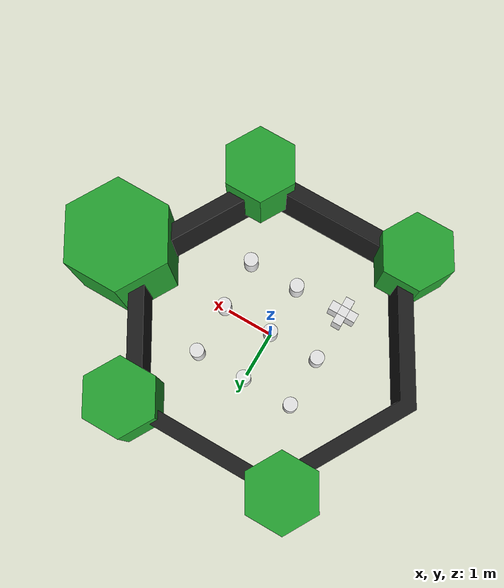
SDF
<sdf version='1.5'>
    <!-- Draw Circle -->
    <!-- README: If modifying this, copy /models/pardo020_turtlbot3_world into /turtlebot3_simulations/turtlebot3_gazebo/models -->
    <model name='ros_symbol'>
      <static>1</static>
      <link name='symbol'>

        <visual name='one_one1'>
          <pose>-1.1 -1.1 0.25 0 0 0</pose>
          <geometry>
            <box>
              <size>0.2 .2 0.5</size>
            </box>
          </geometry>
          <material>
            <script>
              <uri>file://media/materials/scripts/gazebo.material</uri>
              <name>Gazebo/White</name>
            </script>
          </material>
        </visual>

        <collision name='one_one1'>
          <pose>-1.1 -1.1 0.25 0 0 0</pose>
          <geometry>
            <box>
              <size>0.2 .2 0.5</size>
            </box>
          </geometry>
          <max_contacts>10</max_contacts>
          <surface>
            <bounce/>
            <friction>
              <ode/>
            </friction>
            <contact>
              <ode/>
            </contact>
          </surface>
        </collision>

        <visual name='one_one2'>
          <pose>-1.3 -1.1 0.25 0 0 0</pose>
          <geometry>
            <box>
              <size>0.2 .2 0.5</size>
            </box>
          </geometry>
          <material>
            <script>
              <uri>file://media/materials/scripts/gazebo.material</uri>
              <name>Gazebo/White</name>
            </script>
          </material>
        </visual>

        <collision name='one_one2'>
          <pose>-1.3 -1.1 0.25 0 0 0</pose>
          <geometry>
            <box>
              <size>0.2 .2 0.5</size>
            </box>
          </geometry>
          <max_contacts>10</max_contacts>
          <surface>
            <bounce/>
            <friction>
              <ode/>
            </friction>
            <contact>
              <ode/>
            </contact>
          </surface>
        </collision>

        <visual name='one_one3'>
          <pose>-.9 -1.1 0.25 0 0 0</pose>
          <geometry>
            <box>
              <size>0.2 .2 0.5</size>
            </box>
          </geometry>
          <material>
            <script>
              <uri>file://media/materials/scripts/gazebo.material</uri>
              <name>Gazebo/White</name>
            </script>
          </material>
        </visual>

        <collision name='one_one3'>
          <pose>-.9 -1.1 0.25 0 0 0</pose>
          <geometry>
            <box>
              <size>0.2 .2 0.5</size>
            </box>
          </geometry>
          <max_contacts>10</max_contacts>
          <surface>
            <bounce/>
            <friction>
              <ode/>
            </friction>
            <contact>
              <ode/>
            </contact>
          </surface>
        </collision>

        <visual name='one_one4'>
          <pose>-1.1 -1.3 0.25 0 0 0</pose>
          <geometry>
            <box>
              <size>0.2 .2 0.5</size>
            </box>
          </geometry>
          <material>
            <script>
              <uri>file://media/materials/scripts/gazebo.material</uri>
              <name>Gazebo/White</name>
            </script>
          </material>
        </visual>

        <collision name='one_one4'>
          <pose>-1.1 -1.3 0.25 0 0 0</pose>
          <geometry>
            <box>
              <size>0.2 .2 0.5</size>
            </box>
          </geometry>
          <max_contacts>10</max_contacts>
          <surface>
            <bounce/>
            <friction>
              <ode/>
            </friction>
            <contact>
              <ode/>
            </contact>
          </surface>
        </collision>

        <visual name='one_one5'>
          <pose>-1.1 -.9 0.25 0 0 0</pose>
          <geometry>
            <box>
              <size>0.2 .2 0.5</size>
            </box>
          </geometry>
          <material>
            <script>
              <uri>file://media/materials/scripts/gazebo.material</uri>
              <name>Gazebo/White</name>
            </script>
          </material>
        </visual>

        <collision name='one_one5'>
          <pose>-1.1 -.9 0.25 0 0 0</pose>
          <geometry>
            <box>
              <size>0.2 .2 0.5</size>
            </box>
          </geometry>
          <max_contacts>10</max_contacts>
          <surface>
            <bounce/>
            <friction>
              <ode/>
            </friction>
            <contact>
              <ode/>
            </contact>
          </surface>
        </collision>

        <collision name='one_two'>
          <pose>-1.1 0 0.25 0 0 0</pose>
          <geometry>
            <cylinder>
              <radius>0.15</radius>
              <length>0.5</length>
            </cylinder>
          </geometry>
          <max_contacts>10</max_contacts>
          <surface>
            <bounce/>
            <friction>
              <ode/>
            </friction>
            <contact>
              <ode/>
            </contact>
          </surface>
        </collision>

        <visual name='one_two'>
          <pose>-1.1 0 0.25 0 0 0</pose>
          <geometry>
            <cylinder>
              <radius>0.15</radius>
              <length>0.5</length>
            </cylinder>
          </geometry>
          <material>
            <script>
              <uri>file://media/materials/scripts/gazebo.material</uri>
              <name>Gazebo/White</name>
            </script>
          </material>
        </visual>

        <collision name='one_three'>
          <pose>-1.1 1.1 0.25 0 0 0</pose>
          <geometry>
            <cylinder>
              <radius>0.15</radius>
              <length>0.5</length>
            </cylinder>
          </geometry>
          <max_contacts>10</max_contacts>
          <surface>
            <bounce/>
            <friction>
              <ode/>
            </friction>
            <contact>
              <ode/>
            </contact>
          </surface>
        </collision>

        <visual name='one_three'>
          <pose>-1.1 1.1 0.25 0 0 0</pose>
          <geometry>
            <cylinder>
              <radius>0.15</radius>
              <length>0.5</length>
            </cylinder>
          </geometry>
          <material>
            <script>
              <uri>file://media/materials/scripts/gazebo.material</uri>
              <name>Gazebo/White</name>
            </script>
          </material>
        </visual>

        <collision name='two_one'>
          <pose>0 -1.1 0.25 0 0 0</pose>
          <geometry>
            <cylinder>
              <radius>0.15</radius>
              <length>0.5</length>
            </cylinder>
          </geometry>
          <max_contacts>10</max_contacts>
          <surface>
            <bounce/>
            <friction>
              <ode/>
            </friction>
            <contact>
              <ode/>
            </contact>
          </surface>
        </collision>

        <visual name='two_one'>
          <pose>0 -1.1 0.25 0 0 0</pose>
          <geometry>
            <cylinder>
              <radius>0.15</radius>
              <length>0.5</length>
            </cylinder>
          </geometry>
          <material>
            <script>
              <uri>file://media/materials/scripts/gazebo.material</uri>
              <name>Gazebo/White</name>
            </script>
          </material>
        </visual>

        <collision name='two_two'>
          <pose>0 0 0.25 0 0 0</pose>
          <geometry>
            <cylinder>
              <radius>0.15</radius>
              <length>0.5</length>
            </cylinder>
          </geometry>
          <max_contacts>10</max_contacts>
          <surface>
            <bounce/>
            <friction>
              <ode/>
            </friction>
            <contact>
              <ode/>
            </contact>
          </surface>
        </collision>

        <visual name='two_two'>
          <pose>0 0 0.25 0 0 0</pose>
          <geometry>
            <cylinder>
              <radius>0.15</radius>
              <length>0.5</length>
            </cylinder>
          </geometry>
          <material>
            <script>
              <uri>file://media/materials/scripts/gazebo.material</uri>
              <name>Gazebo/White</name>
            </script>
          </material>
        </visual>

        <collision name='two_three'>
          <pose>0 1.1 0.25 0 0 0</pose>
          <geometry>
            <cylinder>
              <radius>0.15</radius>
              <length>0.5</length>
            </cylinder>
          </geometry>
          <max_contacts>10</max_contacts>
          <surface>
            <bounce/>
            <friction>
              <ode/>
            </friction>
            <contact>
              <ode/>
            </contact>
          </surface>
        </collision>

        <visual name='two_three'>
          <pose>0 1.1 0.25 0 0 0</pose>
          <geometry>
            <cylinder>
              <radius>0.15</radius>
              <length>0.5</length>
            </cylinder>
          </geometry>
          <material>
            <script>
              <uri>file://media/materials/scripts/gazebo.material</uri>
              <name>Gazebo/White</name>
            </script>
          </material>
        </visual>

        <collision name='three_one'>
          <pose>1.1 -1.1 0.25 0 0 0</pose>
          <geometry>
            <cylinder>
              <radius>0.15</radius>
              <length>0.5</length>
            </cylinder>
          </geometry>
          <max_contacts>10</max_contacts>
          <surface>
            <bounce/>
            <friction>
              <ode/>
            </friction>
            <contact>
              <ode/>
            </contact>
          </surface>
        </collision>

        <visual name='three_one'>
          <pose>1.1 -1.1 0.25 0 0 0</pose>
          <geometry>
            <cylinder>
              <radius>0.15</radius>
              <length>0.5</length>
            </cylinder>
          </geometry>
          <material>
            <script>
              <uri>file://media/materials/scripts/gazebo.material</uri>
              <name>Gazebo/White</name>
            </script>
          </material>
        </visual>

        <collision name='three_two'>
          <pose>1.1 0 0.25 0 0 0</pose>
          <geometry>
            <cylinder>
              <radius>0.15</radius>
              <length>0.5</length>
            </cylinder>
          </geometry>
          <max_contacts>10</max_contacts>
          <surface>
            <bounce/>
            <friction>
              <ode/>
            </friction>
            <contact>
              <ode/>
            </contact>
          </surface>
        </collision>

        <visual name='three_two'>
          <pose>1.1 0 0.25 0 0 0</pose>
          <geometry>
            <cylinder>
              <radius>0.15</radius>
              <length>0.5</length>
            </cylinder>
          </geometry>
          <material>
            <script>
              <uri>file://media/materials/scripts/gazebo.material</uri>
              <name>Gazebo/White</name>
            </script>
          </material>
        </visual>

        <collision name='three_three'>
          <pose>1.1 1.1 0.25 0 0 0</pose>
          <geometry>
            <cylinder>
              <radius>0.15</radius>
              <length>0.5</length>
            </cylinder>
          </geometry>
          <max_contacts>10</max_contacts>
          <surface>
            <bounce/>
            <friction>
              <ode/>
            </friction>
            <contact>
              <ode/>
            </contact>
          </surface>
        </collision>

        <visual name='three_three'>
          <pose>1.1 1.1 0.25 0 0 0</pose>
          <geometry>
            <cylinder>
              <radius>0.15</radius>
              <length>0.5</length>
            </cylinder>
          </geometry>
          <material>
            <script>
              <uri>file://media/materials/scripts/gazebo.material</uri>
              <name>Gazebo/White</name>
            </script>
          </material>
        </visual>

        <!-- Draw Hexagon -->
        <collision name='head'>
          <pose>3.5 0 -0.5 0 0 0</pose>
          <geometry>
            <mesh>
              <uri>model://turtlebot3_world/meshes/hexagon.dae</uri>
              <scale>0.8 0.8 0.8</scale>
            </mesh>
          </geometry>
          <max_contacts>10</max_contacts>
          <surface>
            <bounce/>
            <friction>
              <ode/>
            </friction>
            <contact>
              <ode/>
            </contact>
          </surface>
        </collision>

        <visual name='head'>
          <pose>3.5 0 -0.5 0 0 0</pose>
          <geometry>
            <mesh>
              <uri>model://turtlebot3_world/meshes/hexagon.dae</uri>
              <scale>0.8 0.8 0.8</scale>
            </mesh>
          </geometry>
          <material>
            <script>
              <uri>file://media/materials/scripts/gazebo.material</uri>
              <name>Gazebo/Green</name>
            </script>
          </material>
        </visual>

        <collision name='left_hand'>
          <pose>1.8 2.7 0 0 0 0</pose>
          <geometry>
            <mesh>
              <uri>model://turtlebot3_world/meshes/hexagon.dae</uri>
              <scale>0.55 0.55 0.55</scale>
            </mesh>
          </geometry>
          <max_contacts>10</max_contacts>
          <surface>
            <bounce/>
            <friction>
              <ode/>
            </friction>
            <contact>
              <ode/>
            </contact>
          </surface>
        </collision>

        <visual name='left_hand'>
          <pose>1.8 2.7 0 0 0 0</pose>
          <geometry>
            <mesh>
              <uri>model://turtlebot3_world/meshes/hexagon.dae</uri>
              <scale>0.55 0.55 0.55</scale>
            </mesh>
          </geometry>
          <material>
            <script>
              <uri>file://media/materials/scripts/gazebo.material</uri>
              <name>Gazebo/Green</name>
            </script>
          </material>
        </visual>

        <collision name='right_hand'>
          <pose>1.8 -2.7 0 0 0 0</pose>
          <geometry>
            <mesh>
              <uri>model://turtlebot3_world/meshes/hexagon.dae</uri>
              <scale>0.55 0.55 0.55</scale>
            </mesh>
          </geometry>
          <max_contacts>10</max_contacts>
          <surface>
            <bounce/>
            <friction>
              <ode/>
            </friction>
            <contact>
              <ode/>
            </contact>
          </surface>
        </collision>

        <visual name='right_hand'>
          <pose>1.8 -2.7 0 0 0 0</pose>
          <geometry>
            <mesh>
              <uri>model://turtlebot3_world/meshes/hexagon.dae</uri>
              <scale>0.55 0.55 0.55</scale>
            </mesh>
          </geometry>
          <material>
            <script>
              <uri>file://media/materials/scripts/gazebo.material</uri>
              <name>Gazebo/Green</name>
            </script>
          </material>
        </visual>

        <collision name='left_foot'>
          <pose>-1.8 2.7 0 0 0 0</pose>
          <geometry>
            <mesh>
              <uri>model://turtlebot3_world/meshes/hexagon.dae</uri>
              <scale>0.55 0.55 0.55</scale>
            </mesh>
          </geometry>
          <max_contacts>10</max_contacts>
          <surface>
            <bounce/>
            <friction>
              <ode/>
            </friction>
            <contact>
              <ode/>
            </contact>
          </surface>
        </collision>

        <visual name='left_foot'>
          <pose>-1.8 2.7 0 0 0 0</pose>
          <geometry>
            <mesh>
              <uri>model://turtlebot3_world/meshes/hexagon.dae</uri>
              <scale>0.55 0.55 0.55</scale>
            </mesh>
          </geometry>
          <material>
            <script>
              <uri>file://media/materials/scripts/gazebo.material</uri>
              <name>Gazebo/Green</name>
            </script>
          </material>
        </visual>

        <collision name='right_foot'>
          <pose>-1.8 -2.7 0 0 0 0</pose>
          <geometry>
            <mesh>
              <uri>model://turtlebot3_world/meshes/hexagon.dae</uri>
              <scale>0.55 0.55 0.55</scale>
            </mesh>
          </geometry>
          <max_contacts>10</max_contacts>
          <surface>
            <bounce/>
            <friction>
              <ode/>
            </friction>
            <contact>
              <ode/>
            </contact>
          </surface>
        </collision>

        <visual name='right_foot'>
          <pose>-1.8 -2.7 0 0 0 0</pose>
          <geometry>
            <mesh>
              <uri>model://turtlebot3_world/meshes/hexagon.dae</uri>
              <scale>0.55 0.55 0.55</scale>
            </mesh>
          </geometry>
          <material>
            <script>
              <uri>file://media/materials/scripts/gazebo.material</uri>
              <name>Gazebo/Green</name>
            </script>
          </material>
        </visual>

        <!-- Draw Wall -->
        <collision name='body'>
        <pose>0 0 -0.3 0 0 -1.5708</pose>
        <geometry>
          <mesh>
            <uri>model://turtlebot3_world/meshes/wall.dae</uri>
            <scale>0.25 0.25 0.25</scale>
          </mesh>
        </geometry>
        <max_contacts>10</max_contacts>
        <surface>
          <bounce/>
          <friction>
            <ode/>
          </friction>
          <contact>
            <ode/>
          </contact>
        </surface>
      </collision>

      <visual name='body'>
        <pose>0 0 -0.3 0 0 -1.5708</pose>
        <geometry>
          <mesh>
            <uri>model://turtlebot3_world/meshes/wall.dae</uri>
            <scale>0.25 0.25 0.25</scale>
          </mesh>
        </geometry>
        <material>
          <script>
            <uri>file://media/materials/scripts/gazebo.material</uri>
            <name>Gazebo/FlatBlack</name>
          </script>
        </material>
      </visual>
    </link>
  </model>
</sdf>
